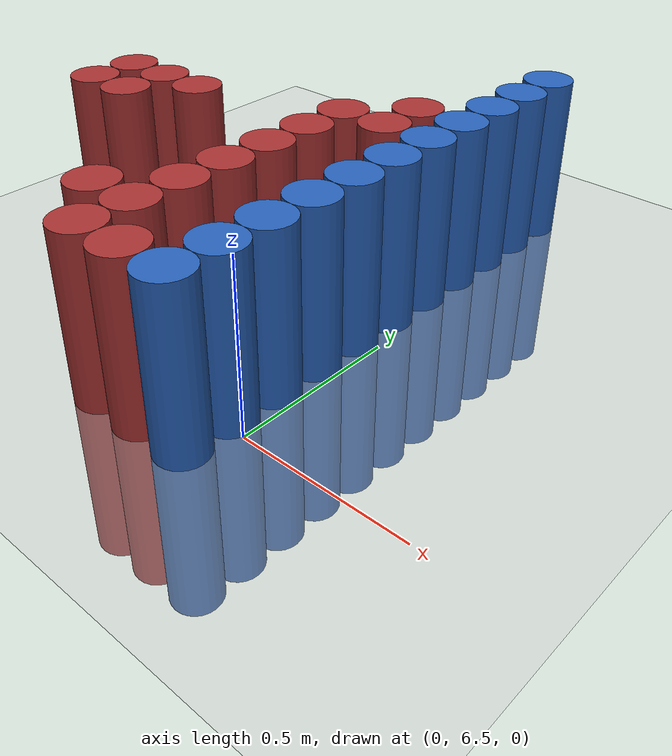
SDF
<sdf version="1.6">
 <world name="world_183">
  <model name="ground_plane">
   <static>1</static>
   <link name="link">
    <collision name="collision">
     <geometry><plane><normal>0 0 1</normal><size>100 100</size></plane></geometry>
     <surface><friction><ode><mu>100</mu><mu2>50</mu2></ode></friction></surface>
    </collision>
    <visual name="visual">
     <cast_shadows>0</cast_shadows>
     <geometry><plane><normal>0 0 1</normal><size>100 100</size></plane></geometry>
     <material>
      <script><uri>file://media/materials/scripts/gazebo.material</uri><name>Gazebo/Grey</name></script>
     </material>
    </visual>
   </link>
  </model>
  <model name="unit_cylinder_247">
   <static>1</static>
   <pose>-1.125000 6.975000 0.000000 0.000000 0.000000 0.000000</pose>
   <link name="link">
    <inertial>
     <mass>1</mass>
     <inertia><ixx>0.145833</ixx><ixy>0</ixy><ixz>0</ixz><iyy>0.145833</iyy><iyz>0</iyz><izz>0.125</izz></inertia>
    </inertial>
    <collision name="collision">
     <geometry><cylinder><radius>0.075000</radius><length>1</length></cylinder></geometry>
    </collision>
    <visual name="visual">
     <geometry><cylinder><radius>0.075000</radius><length>1</length></cylinder></geometry>
     <material>
      <ambient>0.648000 0.192000 0.192000 1</ambient>
      <diffuse>0.648000 0.192000 0.192000 1</diffuse>
     </material>
     <material>
      <script><name>Gazebo/Grey</name><uri>file://media/materials/scripts/gazebo.material</uri></script>
     </material>
    </visual>
   </link>
  </model>
  <model name="unit_cylinder_248">
   <static>1</static>
   <pose>-1.125000 7.125000 0.000000 0.000000 0.000000 0.000000</pose>
   <link name="link">
    <inertial>
     <mass>1</mass>
     <inertia><ixx>0.145833</ixx><ixy>0</ixy><ixz>0</ixz><iyy>0.145833</iyy><iyz>0</iyz><izz>0.125</izz></inertia>
    </inertial>
    <collision name="collision">
     <geometry><cylinder><radius>0.075000</radius><length>1</length></cylinder></geometry>
    </collision>
    <visual name="visual">
     <geometry><cylinder><radius>0.075000</radius><length>1</length></cylinder></geometry>
     <material>
      <ambient>0.648000 0.192000 0.192000 1</ambient>
      <diffuse>0.648000 0.192000 0.192000 1</diffuse>
     </material>
     <material>
      <script><name>Gazebo/Grey</name><uri>file://media/materials/scripts/gazebo.material</uri></script>
     </material>
    </visual>
   </link>
  </model>
  <model name="unit_cylinder_253">
   <static>1</static>
   <pose>-0.975000 6.975000 0.000000 0.000000 0.000000 0.000000</pose>
   <link name="link">
    <inertial>
     <mass>1</mass>
     <inertia><ixx>0.145833</ixx><ixy>0</ixy><ixz>0</ixz><iyy>0.145833</iyy><iyz>0</iyz><izz>0.125</izz></inertia>
    </inertial>
    <collision name="collision">
     <geometry><cylinder><radius>0.075000</radius><length>1</length></cylinder></geometry>
    </collision>
    <visual name="visual">
     <geometry><cylinder><radius>0.075000</radius><length>1</length></cylinder></geometry>
     <material>
      <ambient>0.648000 0.192000 0.192000 1</ambient>
      <diffuse>0.648000 0.192000 0.192000 1</diffuse>
     </material>
     <material>
      <script><name>Gazebo/Grey</name><uri>file://media/materials/scripts/gazebo.material</uri></script>
     </material>
    </visual>
   </link>
  </model>
  <model name="unit_cylinder_254">
   <static>1</static>
   <pose>-0.975000 7.125000 0.000000 0.000000 0.000000 0.000000</pose>
   <link name="link">
    <inertial>
     <mass>1</mass>
     <inertia><ixx>0.145833</ixx><ixy>0</ixy><ixz>0</ixz><iyy>0.145833</iyy><iyz>0</iyz><izz>0.125</izz></inertia>
    </inertial>
    <collision name="collision">
     <geometry><cylinder><radius>0.075000</radius><length>1</length></cylinder></geometry>
    </collision>
    <visual name="visual">
     <geometry><cylinder><radius>0.075000</radius><length>1</length></cylinder></geometry>
     <material>
      <ambient>0.648000 0.192000 0.192000 1</ambient>
      <diffuse>0.648000 0.192000 0.192000 1</diffuse>
     </material>
     <material>
      <script><name>Gazebo/Grey</name><uri>file://media/materials/scripts/gazebo.material</uri></script>
     </material>
    </visual>
   </link>
  </model>
  <model name="unit_cylinder_259">
   <static>1</static>
   <pose>-0.825000 7.125000 0.000000 0.000000 0.000000 0.000000</pose>
   <link name="link">
    <inertial>
     <mass>1</mass>
     <inertia><ixx>0.145833</ixx><ixy>0</ixy><ixz>0</ixz><iyy>0.145833</iyy><iyz>0</iyz><izz>0.125</izz></inertia>
    </inertial>
    <collision name="collision">
     <geometry><cylinder><radius>0.075000</radius><length>1</length></cylinder></geometry>
    </collision>
    <visual name="visual">
     <geometry><cylinder><radius>0.075000</radius><length>1</length></cylinder></geometry>
     <material>
      <ambient>0.648000 0.192000 0.192000 1</ambient>
      <diffuse>0.648000 0.192000 0.192000 1</diffuse>
     </material>
     <material>
      <script><name>Gazebo/Grey</name><uri>file://media/materials/scripts/gazebo.material</uri></script>
     </material>
    </visual>
   </link>
  </model>
  <model name="unit_cylinder_266">
   <static>1</static>
   <pose>-0.525000 6.525000 0.000000 0.000000 0.000000 0.000000</pose>
   <link name="link">
    <inertial>
     <mass>1</mass>
     <inertia><ixx>0.145833</ixx><ixy>0</ixy><ixz>0</ixz><iyy>0.145833</iyy><iyz>0</iyz><izz>0.125</izz></inertia>
    </inertial>
    <collision name="collision">
     <geometry><cylinder><radius>0.075000</radius><length>1</length></cylinder></geometry>
    </collision>
    <visual name="visual">
     <geometry><cylinder><radius>0.075000</radius><length>1</length></cylinder></geometry>
     <material>
      <ambient>0.648000 0.192000 0.192000 1</ambient>
      <diffuse>0.648000 0.192000 0.192000 1</diffuse>
     </material>
     <material>
      <script><name>Gazebo/Grey</name><uri>file://media/materials/scripts/gazebo.material</uri></script>
     </material>
    </visual>
   </link>
  </model>
  <model name="unit_cylinder_271">
   <static>1</static>
   <pose>-0.375000 6.375000 0.000000 0.000000 0.000000 0.000000</pose>
   <link name="link">
    <inertial>
     <mass>1</mass>
     <inertia><ixx>0.145833</ixx><ixy>0</ixy><ixz>0</ixz><iyy>0.145833</iyy><iyz>0</iyz><izz>0.125</izz></inertia>
    </inertial>
    <collision name="collision">
     <geometry><cylinder><radius>0.075000</radius><length>1</length></cylinder></geometry>
    </collision>
    <visual name="visual">
     <geometry><cylinder><radius>0.075000</radius><length>1</length></cylinder></geometry>
     <material>
      <ambient>0.648000 0.192000 0.192000 1</ambient>
      <diffuse>0.648000 0.192000 0.192000 1</diffuse>
     </material>
     <material>
      <script><name>Gazebo/Grey</name><uri>file://media/materials/scripts/gazebo.material</uri></script>
     </material>
    </visual>
   </link>
  </model>
  <model name="unit_cylinder_272">
   <static>1</static>
   <pose>-0.375000 6.525000 0.000000 0.000000 0.000000 0.000000</pose>
   <link name="link">
    <inertial>
     <mass>1</mass>
     <inertia><ixx>0.145833</ixx><ixy>0</ixy><ixz>0</ixz><iyy>0.145833</iyy><iyz>0</iyz><izz>0.125</izz></inertia>
    </inertial>
    <collision name="collision">
     <geometry><cylinder><radius>0.075000</radius><length>1</length></cylinder></geometry>
    </collision>
    <visual name="visual">
     <geometry><cylinder><radius>0.075000</radius><length>1</length></cylinder></geometry>
     <material>
      <ambient>0.648000 0.192000 0.192000 1</ambient>
      <diffuse>0.648000 0.192000 0.192000 1</diffuse>
     </material>
     <material>
      <script><name>Gazebo/Grey</name><uri>file://media/materials/scripts/gazebo.material</uri></script>
     </material>
    </visual>
   </link>
  </model>
  <model name="unit_cylinder_273">
   <static>1</static>
   <pose>-0.375000 6.675000 0.000000 0.000000 0.000000 0.000000</pose>
   <link name="link">
    <inertial>
     <mass>1</mass>
     <inertia><ixx>0.145833</ixx><ixy>0</ixy><ixz>0</ixz><iyy>0.145833</iyy><iyz>0</iyz><izz>0.125</izz></inertia>
    </inertial>
    <collision name="collision">
     <geometry><cylinder><radius>0.075000</radius><length>1</length></cylinder></geometry>
    </collision>
    <visual name="visual">
     <geometry><cylinder><radius>0.075000</radius><length>1</length></cylinder></geometry>
     <material>
      <ambient>0.648000 0.192000 0.192000 1</ambient>
      <diffuse>0.648000 0.192000 0.192000 1</diffuse>
     </material>
     <material>
      <script><name>Gazebo/Grey</name><uri>file://media/materials/scripts/gazebo.material</uri></script>
     </material>
    </visual>
   </link>
  </model>
  <model name="unit_cylinder_274">
   <static>1</static>
   <pose>-0.375000 6.825000 0.000000 0.000000 0.000000 0.000000</pose>
   <link name="link">
    <inertial>
     <mass>1</mass>
     <inertia><ixx>0.145833</ixx><ixy>0</ixy><ixz>0</ixz><iyy>0.145833</iyy><iyz>0</iyz><izz>0.125</izz></inertia>
    </inertial>
    <collision name="collision">
     <geometry><cylinder><radius>0.075000</radius><length>1</length></cylinder></geometry>
    </collision>
    <visual name="visual">
     <geometry><cylinder><radius>0.075000</radius><length>1</length></cylinder></geometry>
     <material>
      <ambient>0.648000 0.192000 0.192000 1</ambient>
      <diffuse>0.648000 0.192000 0.192000 1</diffuse>
     </material>
     <material>
      <script><name>Gazebo/Grey</name><uri>file://media/materials/scripts/gazebo.material</uri></script>
     </material>
    </visual>
   </link>
  </model>
  <model name="unit_cylinder_275">
   <static>1</static>
   <pose>-0.375000 6.975000 0.000000 0.000000 0.000000 0.000000</pose>
   <link name="link">
    <inertial>
     <mass>1</mass>
     <inertia><ixx>0.145833</ixx><ixy>0</ixy><ixz>0</ixz><iyy>0.145833</iyy><iyz>0</iyz><izz>0.125</izz></inertia>
    </inertial>
    <collision name="collision">
     <geometry><cylinder><radius>0.075000</radius><length>1</length></cylinder></geometry>
    </collision>
    <visual name="visual">
     <geometry><cylinder><radius>0.075000</radius><length>1</length></cylinder></geometry>
     <material>
      <ambient>0.648000 0.192000 0.192000 1</ambient>
      <diffuse>0.648000 0.192000 0.192000 1</diffuse>
     </material>
     <material>
      <script><name>Gazebo/Grey</name><uri>file://media/materials/scripts/gazebo.material</uri></script>
     </material>
    </visual>
   </link>
  </model>
  <model name="unit_cylinder_276">
   <static>1</static>
   <pose>-0.375000 7.125000 0.000000 0.000000 0.000000 0.000000</pose>
   <link name="link">
    <inertial>
     <mass>1</mass>
     <inertia><ixx>0.145833</ixx><ixy>0</ixy><ixz>0</ixz><iyy>0.145833</iyy><iyz>0</iyz><izz>0.125</izz></inertia>
    </inertial>
    <collision name="collision">
     <geometry><cylinder><radius>0.075000</radius><length>1</length></cylinder></geometry>
    </collision>
    <visual name="visual">
     <geometry><cylinder><radius>0.075000</radius><length>1</length></cylinder></geometry>
     <material>
      <ambient>0.648000 0.192000 0.192000 1</ambient>
      <diffuse>0.648000 0.192000 0.192000 1</diffuse>
     </material>
     <material>
      <script><name>Gazebo/Grey</name><uri>file://media/materials/scripts/gazebo.material</uri></script>
     </material>
    </visual>
   </link>
  </model>
  <model name="unit_cylinder_277">
   <static>1</static>
   <pose>-0.375000 7.275000 0.000000 0.000000 0.000000 0.000000</pose>
   <link name="link">
    <inertial>
     <mass>1</mass>
     <inertia><ixx>0.145833</ixx><ixy>0</ixy><ixz>0</ixz><iyy>0.145833</iyy><iyz>0</iyz><izz>0.125</izz></inertia>
    </inertial>
    <collision name="collision">
     <geometry><cylinder><radius>0.075000</radius><length>1</length></cylinder></geometry>
    </collision>
    <visual name="visual">
     <geometry><cylinder><radius>0.075000</radius><length>1</length></cylinder></geometry>
     <material>
      <ambient>0.648000 0.192000 0.192000 1</ambient>
      <diffuse>0.648000 0.192000 0.192000 1</diffuse>
     </material>
     <material>
      <script><name>Gazebo/Grey</name><uri>file://media/materials/scripts/gazebo.material</uri></script>
     </material>
    </visual>
   </link>
  </model>
  <model name="unit_cylinder_287">
   <static>1</static>
   <pose>-0.225000 6.375000 0.000000 0.000000 0.000000 0.000000</pose>
   <link name="link">
    <inertial>
     <mass>1</mass>
     <inertia><ixx>0.145833</ixx><ixy>0</ixy><ixz>0</ixz><iyy>0.145833</iyy><iyz>0</iyz><izz>0.125</izz></inertia>
    </inertial>
    <collision name="collision">
     <geometry><cylinder><radius>0.075000</radius><length>1</length></cylinder></geometry>
    </collision>
    <visual name="visual">
     <geometry><cylinder><radius>0.075000</radius><length>1</length></cylinder></geometry>
     <material>
      <ambient>0.648000 0.192000 0.192000 1</ambient>
      <diffuse>0.648000 0.192000 0.192000 1</diffuse>
     </material>
     <material>
      <script><name>Gazebo/Grey</name><uri>file://media/materials/scripts/gazebo.material</uri></script>
     </material>
    </visual>
   </link>
  </model>
  <model name="unit_cylinder_288">
   <static>1</static>
   <pose>-0.225000 7.275000 0.000000 0.000000 0.000000 0.000000</pose>
   <link name="link">
    <inertial>
     <mass>1</mass>
     <inertia><ixx>0.145833</ixx><ixy>0</ixy><ixz>0</ixz><iyy>0.145833</iyy><iyz>0</iyz><izz>0.125</izz></inertia>
    </inertial>
    <collision name="collision">
     <geometry><cylinder><radius>0.075000</radius><length>1</length></cylinder></geometry>
    </collision>
    <visual name="visual">
     <geometry><cylinder><radius>0.075000</radius><length>1</length></cylinder></geometry>
     <material>
      <ambient>0.648000 0.192000 0.192000 1</ambient>
      <diffuse>0.648000 0.192000 0.192000 1</diffuse>
     </material>
     <material>
      <script><name>Gazebo/Grey</name><uri>file://media/materials/scripts/gazebo.material</uri></script>
     </material>
    </visual>
   </link>
  </model>
  <model name="unit_cylinder_289">
   <static>1</static>
   <pose>-0.225000 7.425000 0.000000 0.000000 0.000000 0.000000</pose>
   <link name="link">
    <inertial>
     <mass>1</mass>
     <inertia><ixx>0.145833</ixx><ixy>0</ixy><ixz>0</ixz><iyy>0.145833</iyy><iyz>0</iyz><izz>0.125</izz></inertia>
    </inertial>
    <collision name="collision">
     <geometry><cylinder><radius>0.075000</radius><length>1</length></cylinder></geometry>
    </collision>
    <visual name="visual">
     <geometry><cylinder><radius>0.075000</radius><length>1</length></cylinder></geometry>
     <material>
      <ambient>0.648000 0.192000 0.192000 1</ambient>
      <diffuse>0.648000 0.192000 0.192000 1</diffuse>
     </material>
     <material>
      <script><name>Gazebo/Grey</name><uri>file://media/materials/scripts/gazebo.material</uri></script>
     </material>
    </visual>
   </link>
  </model>
  <model name="unit_cylinder_306">
   <static>1</static>
   <pose>-0.075000 6.375000 0.000000 0.000000 0.000000 0.000000</pose>
   <link name="link">
    <inertial>
     <mass>1</mass>
     <inertia><ixx>0.145833</ixx><ixy>0</ixy><ixz>0</ixz><iyy>0.145833</iyy><iyz>0</iyz><izz>0.125</izz></inertia>
    </inertial>
    <collision name="collision">
     <geometry><cylinder><radius>0.075000</radius><length>1</length></cylinder></geometry>
    </collision>
    <visual name="visual">
     <geometry><cylinder><radius>0.075000</radius><length>1</length></cylinder></geometry>
     <material>
      <ambient>0.152000 0.379000 0.720000 1</ambient>
      <diffuse>0.152000 0.379000 0.720000 1</diffuse>
     </material>
     <material>
      <script><name>Gazebo/Grey</name><uri>file://media/materials/scripts/gazebo.material</uri></script>
     </material>
    </visual>
   </link>
  </model>
  <model name="unit_cylinder_307">
   <static>1</static>
   <pose>-0.075000 6.525000 0.000000 0.000000 0.000000 0.000000</pose>
   <link name="link">
    <inertial>
     <mass>1</mass>
     <inertia><ixx>0.145833</ixx><ixy>0</ixy><ixz>0</ixz><iyy>0.145833</iyy><iyz>0</iyz><izz>0.125</izz></inertia>
    </inertial>
    <collision name="collision">
     <geometry><cylinder><radius>0.075000</radius><length>1</length></cylinder></geometry>
    </collision>
    <visual name="visual">
     <geometry><cylinder><radius>0.075000</radius><length>1</length></cylinder></geometry>
     <material>
      <ambient>0.152000 0.379000 0.720000 1</ambient>
      <diffuse>0.152000 0.379000 0.720000 1</diffuse>
     </material>
     <material>
      <script><name>Gazebo/Grey</name><uri>file://media/materials/scripts/gazebo.material</uri></script>
     </material>
    </visual>
   </link>
  </model>
  <model name="unit_cylinder_308">
   <static>1</static>
   <pose>-0.075000 6.675000 0.000000 0.000000 0.000000 0.000000</pose>
   <link name="link">
    <inertial>
     <mass>1</mass>
     <inertia><ixx>0.145833</ixx><ixy>0</ixy><ixz>0</ixz><iyy>0.145833</iyy><iyz>0</iyz><izz>0.125</izz></inertia>
    </inertial>
    <collision name="collision">
     <geometry><cylinder><radius>0.075000</radius><length>1</length></cylinder></geometry>
    </collision>
    <visual name="visual">
     <geometry><cylinder><radius>0.075000</radius><length>1</length></cylinder></geometry>
     <material>
      <ambient>0.152000 0.379000 0.720000 1</ambient>
      <diffuse>0.152000 0.379000 0.720000 1</diffuse>
     </material>
     <material>
      <script><name>Gazebo/Grey</name><uri>file://media/materials/scripts/gazebo.material</uri></script>
     </material>
    </visual>
   </link>
  </model>
  <model name="unit_cylinder_309">
   <static>1</static>
   <pose>-0.075000 6.825000 0.000000 0.000000 0.000000 0.000000</pose>
   <link name="link">
    <inertial>
     <mass>1</mass>
     <inertia><ixx>0.145833</ixx><ixy>0</ixy><ixz>0</ixz><iyy>0.145833</iyy><iyz>0</iyz><izz>0.125</izz></inertia>
    </inertial>
    <collision name="collision">
     <geometry><cylinder><radius>0.075000</radius><length>1</length></cylinder></geometry>
    </collision>
    <visual name="visual">
     <geometry><cylinder><radius>0.075000</radius><length>1</length></cylinder></geometry>
     <material>
      <ambient>0.152000 0.379000 0.720000 1</ambient>
      <diffuse>0.152000 0.379000 0.720000 1</diffuse>
     </material>
     <material>
      <script><name>Gazebo/Grey</name><uri>file://media/materials/scripts/gazebo.material</uri></script>
     </material>
    </visual>
   </link>
  </model>
  <model name="unit_cylinder_310">
   <static>1</static>
   <pose>-0.075000 6.975000 0.000000 0.000000 0.000000 0.000000</pose>
   <link name="link">
    <inertial>
     <mass>1</mass>
     <inertia><ixx>0.145833</ixx><ixy>0</ixy><ixz>0</ixz><iyy>0.145833</iyy><iyz>0</iyz><izz>0.125</izz></inertia>
    </inertial>
    <collision name="collision">
     <geometry><cylinder><radius>0.075000</radius><length>1</length></cylinder></geometry>
    </collision>
    <visual name="visual">
     <geometry><cylinder><radius>0.075000</radius><length>1</length></cylinder></geometry>
     <material>
      <ambient>0.152000 0.379000 0.720000 1</ambient>
      <diffuse>0.152000 0.379000 0.720000 1</diffuse>
     </material>
     <material>
      <script><name>Gazebo/Grey</name><uri>file://media/materials/scripts/gazebo.material</uri></script>
     </material>
    </visual>
   </link>
  </model>
  <model name="unit_cylinder_311">
   <static>1</static>
   <pose>-0.075000 7.125000 0.000000 0.000000 0.000000 0.000000</pose>
   <link name="link">
    <inertial>
     <mass>1</mass>
     <inertia><ixx>0.145833</ixx><ixy>0</ixy><ixz>0</ixz><iyy>0.145833</iyy><iyz>0</iyz><izz>0.125</izz></inertia>
    </inertial>
    <collision name="collision">
     <geometry><cylinder><radius>0.075000</radius><length>1</length></cylinder></geometry>
    </collision>
    <visual name="visual">
     <geometry><cylinder><radius>0.075000</radius><length>1</length></cylinder></geometry>
     <material>
      <ambient>0.152000 0.379000 0.720000 1</ambient>
      <diffuse>0.152000 0.379000 0.720000 1</diffuse>
     </material>
     <material>
      <script><name>Gazebo/Grey</name><uri>file://media/materials/scripts/gazebo.material</uri></script>
     </material>
    </visual>
   </link>
  </model>
  <model name="unit_cylinder_312">
   <static>1</static>
   <pose>-0.075000 7.275000 0.000000 0.000000 0.000000 0.000000</pose>
   <link name="link">
    <inertial>
     <mass>1</mass>
     <inertia><ixx>0.145833</ixx><ixy>0</ixy><ixz>0</ixz><iyy>0.145833</iyy><iyz>0</iyz><izz>0.125</izz></inertia>
    </inertial>
    <collision name="collision">
     <geometry><cylinder><radius>0.075000</radius><length>1</length></cylinder></geometry>
    </collision>
    <visual name="visual">
     <geometry><cylinder><radius>0.075000</radius><length>1</length></cylinder></geometry>
     <material>
      <ambient>0.152000 0.379000 0.720000 1</ambient>
      <diffuse>0.152000 0.379000 0.720000 1</diffuse>
     </material>
     <material>
      <script><name>Gazebo/Grey</name><uri>file://media/materials/scripts/gazebo.material</uri></script>
     </material>
    </visual>
   </link>
  </model>
  <model name="unit_cylinder_313">
   <static>1</static>
   <pose>-0.075000 7.425000 0.000000 0.000000 0.000000 0.000000</pose>
   <link name="link">
    <inertial>
     <mass>1</mass>
     <inertia><ixx>0.145833</ixx><ixy>0</ixy><ixz>0</ixz><iyy>0.145833</iyy><iyz>0</iyz><izz>0.125</izz></inertia>
    </inertial>
    <collision name="collision">
     <geometry><cylinder><radius>0.075000</radius><length>1</length></cylinder></geometry>
    </collision>
    <visual name="visual">
     <geometry><cylinder><radius>0.075000</radius><length>1</length></cylinder></geometry>
     <material>
      <ambient>0.152000 0.379000 0.720000 1</ambient>
      <diffuse>0.152000 0.379000 0.720000 1</diffuse>
     </material>
     <material>
      <script><name>Gazebo/Grey</name><uri>file://media/materials/scripts/gazebo.material</uri></script>
     </material>
    </visual>
   </link>
  </model>
  <model name="unit_cylinder_314">
   <static>1</static>
   <pose>-0.075000 7.575000 0.000000 0.000000 0.000000 0.000000</pose>
   <link name="link">
    <inertial>
     <mass>1</mass>
     <inertia><ixx>0.145833</ixx><ixy>0</ixy><ixz>0</ixz><iyy>0.145833</iyy><iyz>0</iyz><izz>0.125</izz></inertia>
    </inertial>
    <collision name="collision">
     <geometry><cylinder><radius>0.075000</radius><length>1</length></cylinder></geometry>
    </collision>
    <visual name="visual">
     <geometry><cylinder><radius>0.075000</radius><length>1</length></cylinder></geometry>
     <material>
      <ambient>0.152000 0.379000 0.720000 1</ambient>
      <diffuse>0.152000 0.379000 0.720000 1</diffuse>
     </material>
     <material>
      <script><name>Gazebo/Grey</name><uri>file://media/materials/scripts/gazebo.material</uri></script>
     </material>
    </visual>
   </link>
  </model>
  <model name="unit_cylinder_315">
   <static>1</static>
   <pose>-0.075000 7.725000 0.000000 0.000000 0.000000 0.000000</pose>
   <link name="link">
    <inertial>
     <mass>1</mass>
     <inertia><ixx>0.145833</ixx><ixy>0</ixy><ixz>0</ixz><iyy>0.145833</iyy><iyz>0</iyz><izz>0.125</izz></inertia>
    </inertial>
    <collision name="collision">
     <geometry><cylinder><radius>0.075000</radius><length>1</length></cylinder></geometry>
    </collision>
    <visual name="visual">
     <geometry><cylinder><radius>0.075000</radius><length>1</length></cylinder></geometry>
     <material>
      <ambient>0.152000 0.379000 0.720000 1</ambient>
      <diffuse>0.152000 0.379000 0.720000 1</diffuse>
     </material>
     <material>
      <script><name>Gazebo/Grey</name><uri>file://media/materials/scripts/gazebo.material</uri></script>
     </material>
    </visual>
   </link>
  </model>
  <model name="unit_cylinder_316">
   <static>1</static>
   <pose>-0.075000 7.875000 0.000000 0.000000 0.000000 0.000000</pose>
   <link name="link">
    <inertial>
     <mass>1</mass>
     <inertia><ixx>0.145833</ixx><ixy>0</ixy><ixz>0</ixz><iyy>0.145833</iyy><iyz>0</iyz><izz>0.125</izz></inertia>
    </inertial>
    <collision name="collision">
     <geometry><cylinder><radius>0.075000</radius><length>1</length></cylinder></geometry>
    </collision>
    <visual name="visual">
     <geometry><cylinder><radius>0.075000</radius><length>1</length></cylinder></geometry>
     <material>
      <ambient>0.152000 0.379000 0.720000 1</ambient>
      <diffuse>0.152000 0.379000 0.720000 1</diffuse>
     </material>
     <material>
      <script><name>Gazebo/Grey</name><uri>file://media/materials/scripts/gazebo.material</uri></script>
     </material>
    </visual>
   </link>
  </model>
 </world>
</sdf>
